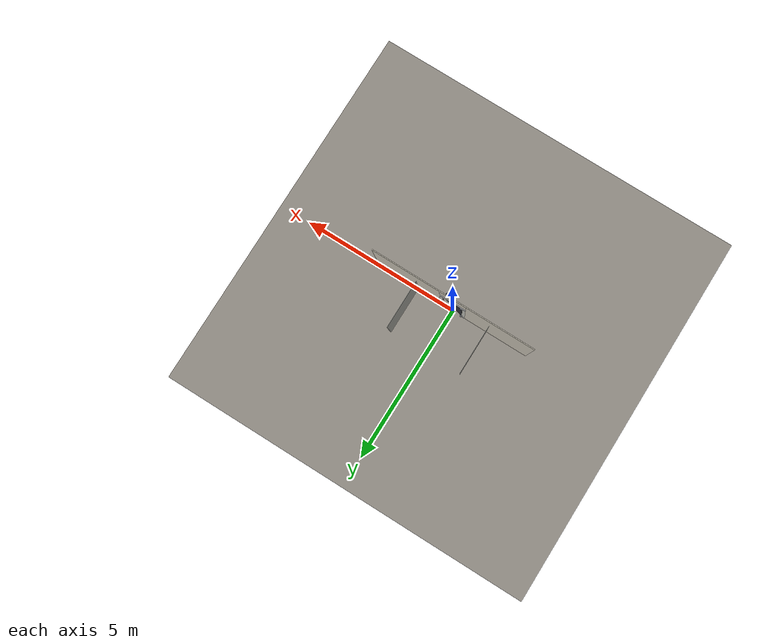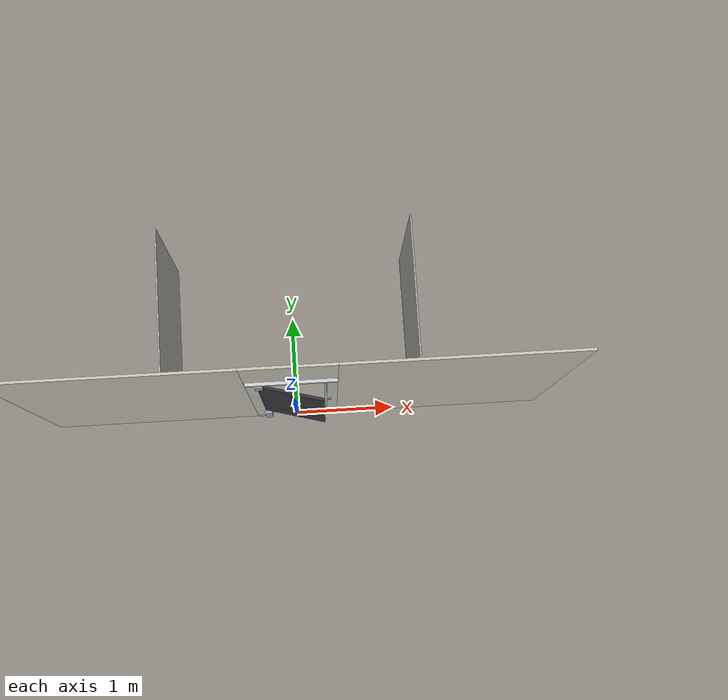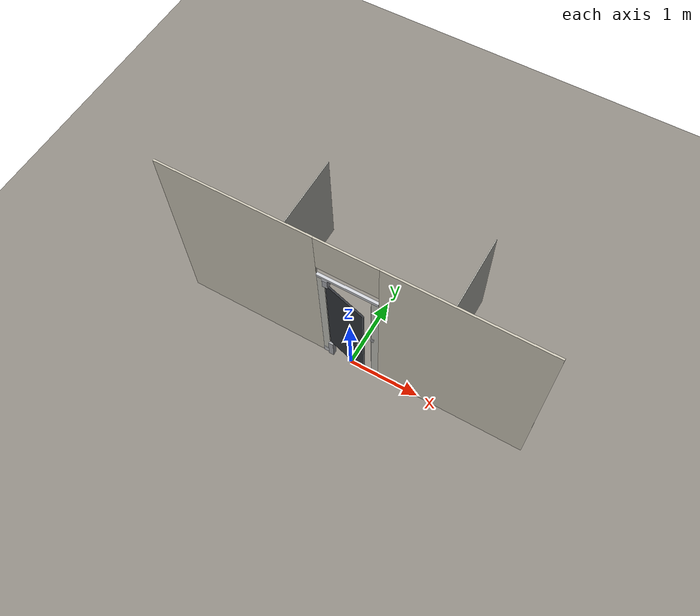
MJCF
<?xml version="1.0" ?>
<mujoco model="db0943_stall_full">
  <compiler angle="radian" meshdir="../../hardware" texturedir="../../textures" autolimits="true" inertiafromgeom="false"/>
  <option timestep="0.002" integrator="implicitfast" cone="elliptic" impratio="10" noslip_iterations="3">
    <flag multiccd="enable"/>
  </option>
  <size memory="16M"/>
  <default>
    <geom condim="4" solref="0.005 1" solimp="0.95 0.99 0.001"/>
    <joint solreflimit="0.005 1" solimplimit="0.95 0.99 0.001"/>
    <tendon solreflimit="0.005 1"/>
    <equality solref="0.002 1"/>
  </default>
  <visual>
    <headlight ambient="0.4 0.4 0.4" diffuse="0.7 0.7 0.7" specular="0.2 0.2 0.2"/>
    <quality shadowsize="4096"/>
    <map znear="0.01" zfar="60"/>
  </visual>
  <asset>
    <mesh name="coat_hook_d622d37ad0" file="coat_hook_d622d37ad0.obj"/>
    <material name="mat_floor" rgba="0.55 0.53 0.5 1" specular="0.2" shininess="0.15" reflectance="0"/>
    <material name="mat_wall" rgba="0.78 0.76 0.7 1" specular="0.2" shininess="0.1" reflectance="0"/>
    <material name="mat_frame" rgba="0.75 0.75 0.72 1" specular="0.2" shininess="0.65" reflectance="0"/>
    <material name="mat_shoe" rgba="0.75 0.76 0.77 1" specular="0.8" shininess="0.65" reflectance="0.4"/>
    <material name="mat_headrail" rgba="0.8 0.81 0.83 1" specular="0.8" shininess="0.6" reflectance="0.4"/>
    <material name="mat_leaf" rgba="0.2 0.21 0.23 1" specular="0.23" shininess="0.57" reflectance="0.02"/>
    <material name="mat_op_stainless" rgba="0.75 0.76 0.77 1" specular="0.8" shininess="0.65" reflectance="0.4"/>
    <material name="mat_hinge" rgba="0.65 0.66 0.68 1" specular="0.74" shininess="0.5" reflectance="0.36"/>
    <texture name="skybox" type="skybox" builtin="gradient" rgb1="0.6 0.7 0.85" rgb2="0.9 0.92 0.95" width="256" height="256"/>
  </asset>
  <worldbody>
    <light name="sun" pos="1.5 -2.5 4" dir="-0.3 0.5 -0.8" directional="true" diffuse="0.8 0.8 0.8" specular="0.3 0.3 0.3" castshadow="true"/>
    <light name="fill" pos="-1.5 2.5 3" dir="0.3 -0.5 -0.7" directional="true" diffuse="0.35 0.35 0.4" castshadow="false"/>
    <camera name="robot_view" pos="0 -2.59375 1.77625" xyaxes="1 0 0 0 0.26963 0.962964" fovy="52"/>
    <camera name="far_view" pos="0 2.59375 1.77625" xyaxes="-1 0 0 0 -0.26963 0.962964" fovy="52"/>
    <camera name="iso" pos="1.97125 -2.17875 2.19125" xyaxes="0.741536 0.670913 0 -0.242917 0.268487 0.932151" fovy="46"/>
    <camera name="detail_handle" pos="0.405 -0.8505 1.28" xyaxes="0.97561 0.219512 0 -0.070934 0.315262 0.94635" fovy="38"/>
    <geom name="floor" type="box" size="6 6 0.05" pos="0 0 -0.05" material="mat_floor" group="0" contype="1" conaffinity="1" friction="0.8 0.005 0.0001" density="2400"/>
    <geom name="wall_left" type="box" size="1.0445 0.0125 1.35" pos="-1.4555 0 1.35" material="mat_wall" group="0" contype="1" conaffinity="1" friction="0.6 0.005 0.0001" density="800"/>
    <geom name="wall_right" type="box" size="1.0445 0.0125 1.35" pos="1.4555 0 1.35" material="mat_wall" group="0" contype="1" conaffinity="1" friction="0.6 0.005 0.0001" density="800"/>
    <geom name="wall_header" type="box" size="0.411 0.0125 0.3" pos="0 0 2.4" material="mat_wall" group="0" contype="1" conaffinity="1" friction="0.6 0.005 0.0001" density="800"/>
    <geom name="pilaster_l" type="box" size="0.05 0.0125 0.91" pos="-0.361 0 1.01" material="mat_frame" group="0" contype="1" conaffinity="1" friction="0.6 0.005 0.0001" density="1400"/>
    <geom name="pilaster_shoe_l" type="box" size="0.05 0.0175 0.05" pos="-0.361 0 0.05" material="mat_shoe" group="1" contype="0" conaffinity="0" density="7900"/>
    <geom name="pilaster_r" type="box" size="0.05 0.0125 0.91" pos="0.361 0 1.01" material="mat_frame" group="0" contype="1" conaffinity="1" friction="0.6 0.005 0.0001" density="1400"/>
    <geom name="pilaster_shoe_r" type="box" size="0.05 0.0175 0.05" pos="0.361 0 0.05" material="mat_shoe" group="1" contype="0" conaffinity="0" density="7900"/>
    <geom name="headrail" type="box" size="0.411 0.02 0.02" pos="0 0 1.94" material="mat_headrail" group="0" contype="1" conaffinity="1" friction="0.6 0.005 0.0001" density="2700"/>
    <geom name="partition_l" type="box" size="0.006 0.75 0.75" pos="-1.161 0.75 1.1" material="mat_frame" group="0" contype="1" conaffinity="1" friction="0.6 0.005 0.0001" density="1400"/>
    <geom name="partition_r" type="box" size="0.006 0.75 0.75" pos="1.161 0.75 1.1" material="mat_frame" group="0" contype="1" conaffinity="1" friction="0.6 0.005 0.0001" density="1400"/>
    <geom name="latch_keeper_n" type="box" size="0.02 0.0025 0.02" pos="0.331 -0.028 1" material="mat_op_stainless" group="0" contype="1" conaffinity="1" friction="0.6 0.005 0.0001" density="7900"/>
    <geom name="latch_keeper_p" type="box" size="0.02 0.0025 0.02" pos="0.331 -0.013 1" material="mat_op_stainless" group="0" contype="1" conaffinity="1" friction="0.6 0.005 0.0001" density="7900"/>
    <geom name="latch_keeper_base" type="box" size="0.02 0.01 0.003" pos="0.331 -0.0205 0.976" material="mat_op_stainless" group="0" contype="1" conaffinity="1" friction="0.6 0.005 0.0001" density="7900"/>
    <geom name="stop_strip" type="box" size="0.01 0.006 0.735" pos="0.301 0.0185 1.035" material="mat_frame" group="0" contype="1" conaffinity="1" friction="0.6 0.005 0.0001" density="1400"/>
    <geom name="pivot_bottom_socket" type="box" size="0.035 0.035 0.154" pos="-0.291 0 0.144" material="mat_hinge" group="1" contype="0" conaffinity="0" density="7850"/>
    <geom name="pivot_top_bracket" type="box" size="0.035 0.035 0.071" pos="-0.291 0 1.849" material="mat_hinge" group="1" contype="0" conaffinity="0" density="7850"/>
    <site name="approach_point" pos="0 -1.2 0" quat="1 0 0 0" size="0.05" rgba="0.2 0.9 0.2 0.5" group="4"/>
    <site name="goal_point" pos="0 1 0" quat="1 0 0 0" size="0.05" rgba="0.2 0.9 0.2 0.5" group="4"/>
    <site name="door_plane_center" pos="0 0 1" quat="1 0 0 0" size="0.02" rgba="0.2 0.9 0.2 0.5" group="4"/>
    <body name="leaf_riser" pos="-0.311 0 0">
      <inertial pos="0 0 0" mass="0.01" quat="1 0 0 0" diaginertia="0.000001 0.000001 0.000001"/>
      <joint name="leaf_rise" type="slide" axis="0 0 1" limited="true" range="0 0.03" damping="1" armature="0.5" ref="0.001667"/>
      <body name="leaf" pos="0 0 0">
        <inertial pos="0.302105 -0.067406 1.038367" mass="10.991957" quat="0.561351 0.429846 -0.561073 0.430481" diaginertia="0.347107511 2.004447265 2.350094688"/>
        <joint name="leaf_hinge" type="hinge" axis="0 0 -1" pos="0.05 0 0" limited="true" range="0 1.570796" damping="0.086758" frictionloss="0.110615" armature="0.02" ref="0.261799"/>
        <geom name="leaf_slab" type="box" size="0.305 0.0125 0.735" pos="0.302107 -0.067552 1.035" quat="0.991445 0 0 -0.130526" material="mat_leaf" group="0" contype="1" conaffinity="1" friction="0.4 0.005 0.0001" density="1"/>
        <geom name="slide_latch_plate" type="box" size="0.048 0.001 0.022" pos="0.549753 -0.147885 1" quat="0.991445 0 0 -0.130526" material="mat_op_stainless" group="1" contype="0" conaffinity="0" density="7900"/>
        <geom name="slide_latch_guide_leg_n" type="box" size="0.005 0.0015 0.009" pos="0.567967 -0.161047 0.9835" quat="0.701057 0.701057 -0.092296 -0.092296" material="mat_op_stainless" group="1" contype="0" conaffinity="0" density="7800"/>
        <geom name="slide_latch_guide_leg_p" type="box" size="0.005 0.0015 0.009" pos="0.567967 -0.161047 1.0165" quat="0.701057 0.701057 -0.092296 -0.092296" material="mat_op_stainless" group="1" contype="0" conaffinity="0" density="7800"/>
        <geom name="slide_latch_guide_bridge" type="box" size="0.005 0.018 0.0015" pos="0.566026 -0.168292 1" quat="0.701057 0.701057 -0.092296 -0.092296" material="mat_op_stainless" group="1" contype="0" conaffinity="0" density="7800"/>
        <geom name="coat_hook" type="mesh" mesh="coat_hook_d622d37ad0" pos="0.305342 -0.055478 1.62" quat="-0.701057 0.701057 -0.092296 0.092296" material="mat_op_stainless" group="2" contype="0" conaffinity="0" density="7000"/>
        <geom name="pivot_bottom" type="cylinder" size="0.014 0.004" pos="0.021022 0.007765 0.295" quat="0.991445 0 0 -0.130526" material="mat_hinge" group="1" contype="0" conaffinity="0" density="7850"/>
        <geom name="pivot_top" type="cylinder" size="0.014 0.004" pos="0.021022 0.007765 1.774" quat="0.991445 0 0 -0.130526" material="mat_hinge" group="1" contype="0" conaffinity="0" density="7850"/>
        <body name="slide_latch" pos="0.543112 -0.153352 1" quat="0.991445 0 0 -0.130526">
          <inertial pos="-0.004044 -0.001618 0" mass="0.140251" quat="-0.027514 -0.027514 0.706571 0.706571" diaginertia="0.000009989 0.000084063 0.000085949"/>
          <joint name="slide_latch_slide" type="slide" axis="-1 0 0" limited="true" range="0 0.03" damping="0.5" frictionloss="0.5" armature="0.1" ref="0.03"/>
          <geom name="slide_latch_bar" type="box" size="0.04 0.004 0.012" pos="0 0 0" material="mat_op_stainless" group="0" contype="1" conaffinity="1" friction="0.6 0.005 0.0001" density="7900"/>
          <geom name="slide_latch_knob" type="capsule" size="0.005 0.012" pos="-0.03 -0.012 0" quat="0.707107 0.707107 0 0" material="mat_op_stainless" group="0" contype="1" conaffinity="1" friction="0.6 0.005 0.0001" density="7850"/>
          <site name="grip_latch" pos="-0.03 -0.03 0" quat="1 0 0 0" size="0.01" rgba="0.2 0.9 0.2 0.5" group="4"/>
        </body>
      </body>
    </body>
  </worldbody>
  <equality>
    <joint name="leaf_rise_couple" joint1="leaf_rise" joint2="leaf_hinge" polycoef="0 0.006366 0 0 0" active="true"/>
  </equality>
  <sensor>
    <jointpos name="leaf_hinge_pos" joint="leaf_hinge"/>
    <jointvel name="leaf_hinge_vel" joint="leaf_hinge"/>
    <jointpos name="slide_latch_slide_pos" joint="slide_latch_slide"/>
    <jointvel name="slide_latch_slide_vel" joint="slide_latch_slide"/>
  </sensor>
</mujoco>
